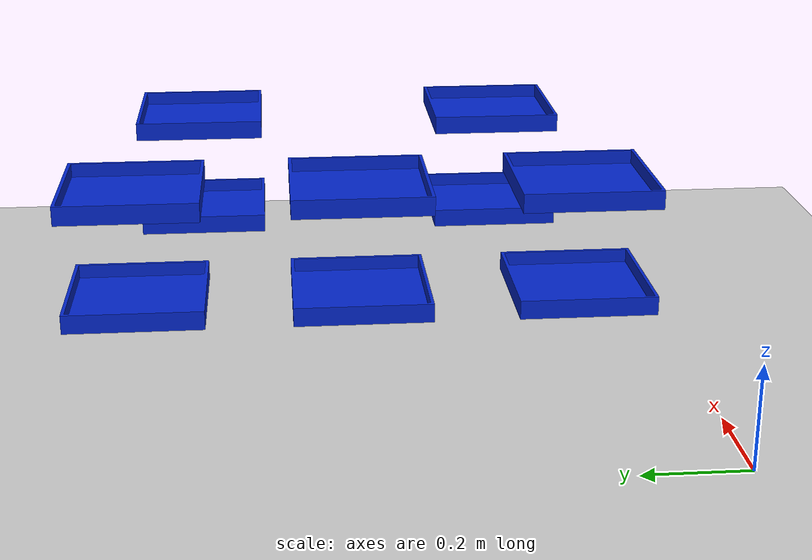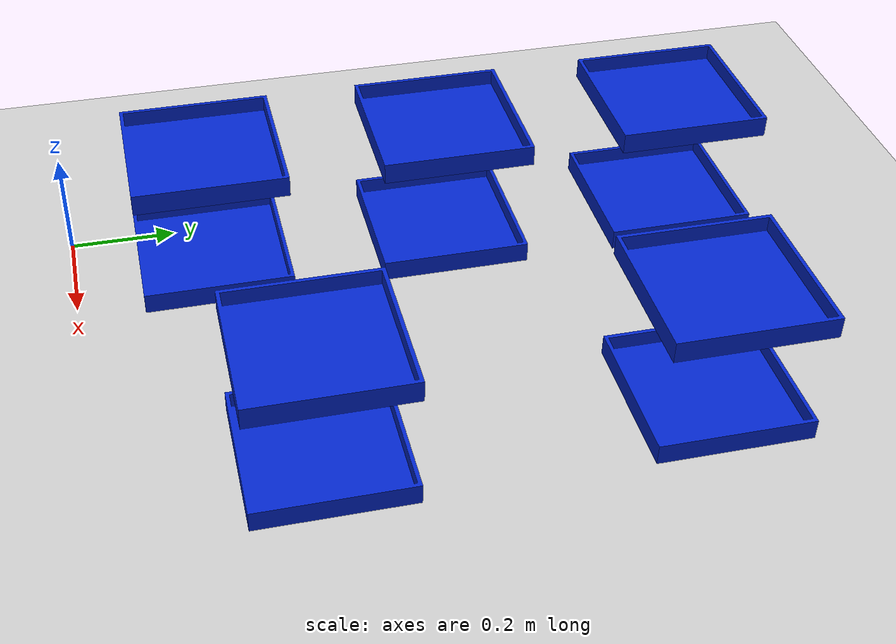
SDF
<?xml version="1.0" ?>
<sdf version="1.4">
  <world name="default">
    <include>
      <uri>model://ground_plane</uri>
    </include>
    <include>
      <uri>model://sun</uri>
    </include>
    <include>
      <uri>model://blue_tray</uri>
      <name>blue_tray0</name>
      <pose>0.35 0.25 0.2 0 0 0</pose>
    </include>
    <include>
      <uri>model://blue_tray</uri>
      <name>blue_tray1</name>
      <pose>0.35 0.654 0.2 0 0 0</pose>
    </include>
    <include>
      <uri>model://blue_tray</uri>
      <name>blue_tray2</name>
      <pose>0.35 1.059 0.2 0 0 0</pose>
    </include>
    <include>
      <uri>model://blue_tray</uri>
      <name>blue_tray3</name>
      <pose>0.855 0.35 0.2 0 0 1.5708</pose>
    </include>
    <include>
      <uri>model://blue_tray</uri>
      <name>blue_tray4</name>
      <pose>0.855 0.953 0.2 0 0 1.5708</pose>
    </include>
    <include>
      <uri>model://blue_tray</uri>
      <name>blue_tray5</name>
      <pose>0.35 0.25 0.4 0 0 0</pose>
    </include>
    <include>
      <uri>model://blue_tray</uri>
      <name>blue_tray6</name>
      <pose>0.35 0.654 0.4 0 0 0</pose>
    </include>
    <include>
      <uri>model://blue_tray</uri>
      <name>blue_tray7</name>
      <pose>0.35 1.059 0.4 0 0 0</pose>
    </include>
    <include>
      <uri>model://blue_tray</uri>
      <name>blue_tray8</name>
      <pose>0.855 0.35 0.4 0 0 1.5708</pose>
    </include>
    <include>
      <uri>model://blue_tray</uri>
      <name>blue_tray9</name>
      <pose>0.855 0.954 0.4 0 0 1.5708</pose>
    </include>
    <physics type="ode">
      <max_step_size>0.001</max_step_size>
      <real_time_factor>1</real_time_factor>
      <real_time_update_rate>1000</real_time_update_rate>
      <!-- (2022-12-20) humble: change gravity from [0 0 -9.81] to [0 0 0] -->
      <gravity>0 0 -9.81</gravity>
    </physics>

  </world>
</sdf>

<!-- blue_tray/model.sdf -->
<sdf version='1.6'>
  <model name='blue_tray'>
    <static>true</static>
    <link name='link'>
      <self_collide>0</self_collide>
      <enable_wind>0</enable_wind>
      <kinematic>0</kinematic>
      <pose frame=''>0 0 0 0 -0 0</pose>
      <gravity>1</gravity>
      <inertial>
        <mass>1</mass>
        <pose frame=''>0 0 0 0 -0 0</pose>
        <inertia>
          <ixx>1</ixx>
          <ixy>0</ixy>
          <ixz>0</ixz>
          <iyy>1</iyy>
          <iyz>0</iyz>
          <izz>1</izz>
        </inertia>
      </inertial>
      <visual name='visual'>
        <pose frame=''>0 0 0.005 0 -0 0</pose>
        <geometry>
          <mesh>
            <scale>0.5 0.5 0.5</scale>
            <uri>model://blue_tray/meshes/blue_tray.dae</uri>
          </mesh>
        </geometry>
      </visual>
      <collision name='front_wall'>
        <laser_retro>0</laser_retro>
        <max_contacts>10</max_contacts>
        <pose frame=''>0.12 0 0.015 0 -0 0</pose>
        <geometry>
          <box>
            <size>0.008 0.25 0.03</size>
          </box>
        </geometry>
        <surface>
          <friction>
            <ode>
              <mu>1</mu>
              <mu2>1</mu2>
              <fdir1>0 0 0</fdir1>
              <slip1>0</slip1>
              <slip2>0</slip2>
            </ode>
            <torsional>
              <coefficient>1</coefficient>
              <patch_radius>0</patch_radius>
              <surface_radius>0</surface_radius>
              <use_patch_radius>1</use_patch_radius>
              <ode>
                <slip>0</slip>
              </ode>
            </torsional>
          </friction>
          <bounce>
            <restitution_coefficient>0</restitution_coefficient>
            <threshold>1e+06</threshold>
          </bounce>
          <contact>
            <collide_without_contact>0</collide_without_contact>
            <collide_without_contact_bitmask>1</collide_without_contact_bitmask>
            <collide_bitmask>1</collide_bitmask>
            <ode>
              <soft_cfm>0</soft_cfm>
              <soft_erp>0.2</soft_erp>
              <kp>1e+13</kp>
              <kd>1</kd>
              <max_vel>0.01</max_vel>
              <min_depth>0</min_depth>
            </ode>
            <bullet>
              <split_impulse>1</split_impulse>
              <split_impulse_penetration_threshold>-0.01</split_impulse_penetration_threshold>
              <soft_cfm>0</soft_cfm>
              <soft_erp>0.2</soft_erp>
              <kp>1e+13</kp>
              <kd>1</kd>
            </bullet>
          </contact>
        </surface>
      </collision>
      <collision name='right_wall'>
        <laser_retro>0</laser_retro>
        <max_contacts>10</max_contacts>
        <pose frame=''>0 -0.12 0.015 0 -0 0</pose>
        <geometry>
          <box>
            <size>0.25 0.012 0.03</size>
          </box>
        </geometry>
        <surface>
          <friction>
            <ode>
              <mu>1</mu>
              <mu2>1</mu2>
              <fdir1>0 0 0</fdir1>
              <slip1>0</slip1>
              <slip2>0</slip2>
            </ode>
            <torsional>
              <coefficient>1</coefficient>
              <patch_radius>0</patch_radius>
              <surface_radius>0</surface_radius>
              <use_patch_radius>1</use_patch_radius>
              <ode>
                <slip>0</slip>
              </ode>
            </torsional>
          </friction>
          <bounce>
            <restitution_coefficient>0</restitution_coefficient>
            <threshold>1e+06</threshold>
          </bounce>
          <contact>
            <collide_without_contact>0</collide_without_contact>
            <collide_without_contact_bitmask>1</collide_without_contact_bitmask>
            <collide_bitmask>1</collide_bitmask>
            <ode>
              <soft_cfm>0</soft_cfm>
              <soft_erp>0.2</soft_erp>
              <kp>1e+13</kp>
              <kd>1</kd>
              <max_vel>0.01</max_vel>
              <min_depth>0</min_depth>
            </ode>
            <bullet>
              <split_impulse>1</split_impulse>
              <split_impulse_penetration_threshold>-0.01</split_impulse_penetration_threshold>
              <soft_cfm>0</soft_cfm>
              <soft_erp>0.2</soft_erp>
              <kp>1e+13</kp>
              <kd>1</kd>
            </bullet>
          </contact>
        </surface>
      </collision>
      <collision name='bottom'>
        <laser_retro>0</laser_retro>
        <max_contacts>10</max_contacts>
        <pose frame=''>0 0 0 0 -0 0</pose>
        <geometry>
          <box>
            <size>0.25 0.25 0.01</size>
          </box>
        </geometry>
        <surface>
          <friction>
            <ode>
              <mu>1</mu>
              <mu2>1</mu2>
              <fdir1>0 0 0</fdir1>
              <slip1>0</slip1>
              <slip2>0</slip2>
            </ode>
            <torsional>
              <coefficient>1</coefficient>
              <patch_radius>0</patch_radius>
              <surface_radius>0</surface_radius>
              <use_patch_radius>1</use_patch_radius>
              <ode>
                <slip>0</slip>
              </ode>
            </torsional>
          </friction>
          <bounce>
            <restitution_coefficient>0</restitution_coefficient>
            <threshold>1e+06</threshold>
          </bounce>
          <contact>
            <collide_without_contact>0</collide_without_contact>
            <collide_without_contact_bitmask>1</collide_without_contact_bitmask>
            <collide_bitmask>1</collide_bitmask>
            <ode>
              <soft_cfm>0</soft_cfm>
              <soft_erp>0.2</soft_erp>
              <kp>1e+13</kp>
              <kd>1</kd>
              <max_vel>0.01</max_vel>
              <min_depth>0</min_depth>
            </ode>
            <bullet>
              <split_impulse>1</split_impulse>
              <split_impulse_penetration_threshold>-0.01</split_impulse_penetration_threshold>
              <soft_cfm>0</soft_cfm>
              <soft_erp>0.2</soft_erp>
              <kp>1e+13</kp>
              <kd>1</kd>
            </bullet>
          </contact>
        </surface>
      </collision>
      <collision name='left_wall'>
        <laser_retro>0</laser_retro>
        <max_contacts>10</max_contacts>
        <pose frame=''>0 0.12 0.015 0 -0 0</pose>
        <geometry>
          <box>
            <size>0.25 0.012 0.03</size>
          </box>
        </geometry>
        <surface>
          <friction>
            <ode>
              <mu>1</mu>
              <mu2>1</mu2>
              <fdir1>0 0 0</fdir1>
              <slip1>0</slip1>
              <slip2>0</slip2>
            </ode>
            <torsional>
              <coefficient>1</coefficient>
              <patch_radius>0</patch_radius>
              <surface_radius>0</surface_radius>
              <use_patch_radius>1</use_patch_radius>
              <ode>
                <slip>0</slip>
              </ode>
            </torsional>
          </friction>
          <bounce>
            <restitution_coefficient>0</restitution_coefficient>
            <threshold>1e+06</threshold>
          </bounce>
          <contact>
            <collide_without_contact>0</collide_without_contact>
            <collide_without_contact_bitmask>1</collide_without_contact_bitmask>
            <collide_bitmask>1</collide_bitmask>
            <ode>
              <soft_cfm>0</soft_cfm>
              <soft_erp>0.2</soft_erp>
              <kp>1e+13</kp>
              <kd>1</kd>
              <max_vel>0.01</max_vel>
              <min_depth>0</min_depth>
            </ode>
            <bullet>
              <split_impulse>1</split_impulse>
              <split_impulse_penetration_threshold>-0.01</split_impulse_penetration_threshold>
              <soft_cfm>0</soft_cfm>
              <soft_erp>0.2</soft_erp>
              <kp>1e+13</kp>
              <kd>1</kd>
            </bullet>
          </contact>
        </surface>
      </collision>
      <collision name='back_wall'>
        <laser_retro>0</laser_retro>
        <max_contacts>10</max_contacts>
        <pose frame=''>-0.12 0 0.015 0 -0 0</pose>
        <geometry>
          <box>
            <size>0.008 0.25 0.03</size>
          </box>
        </geometry>
        <surface>
          <friction>
            <ode>
              <mu>1</mu>
              <mu2>1</mu2>
              <fdir1>0 0 0</fdir1>
              <slip1>0</slip1>
              <slip2>0</slip2>
            </ode>
            <torsional>
              <coefficient>1</coefficient>
              <patch_radius>0</patch_radius>
              <surface_radius>0</surface_radius>
              <use_patch_radius>1</use_patch_radius>
              <ode>
                <slip>0</slip>
              </ode>
            </torsional>
          </friction>
          <bounce>
            <restitution_coefficient>0</restitution_coefficient>
            <threshold>1e+06</threshold>
          </bounce>
          <contact>
            <collide_without_contact>0</collide_without_contact>
            <collide_without_contact_bitmask>1</collide_without_contact_bitmask>
            <collide_bitmask>1</collide_bitmask>
            <ode>
              <soft_cfm>0</soft_cfm>
              <soft_erp>0.2</soft_erp>
              <kp>1e+13</kp>
              <kd>1</kd>
              <max_vel>0.01</max_vel>
              <min_depth>0</min_depth>
            </ode>
            <bullet>
              <split_impulse>1</split_impulse>
              <split_impulse_penetration_threshold>-0.01</split_impulse_penetration_threshold>
              <soft_cfm>0</soft_cfm>
              <soft_erp>0.2</soft_erp>
              <kp>1e+13</kp>
              <kd>1</kd>
            </bullet>
          </contact>
        </surface>
      </collision>
    </link>
    <static>1</static>
    <allow_auto_disable>1</allow_auto_disable>
  </model>
</sdf>
